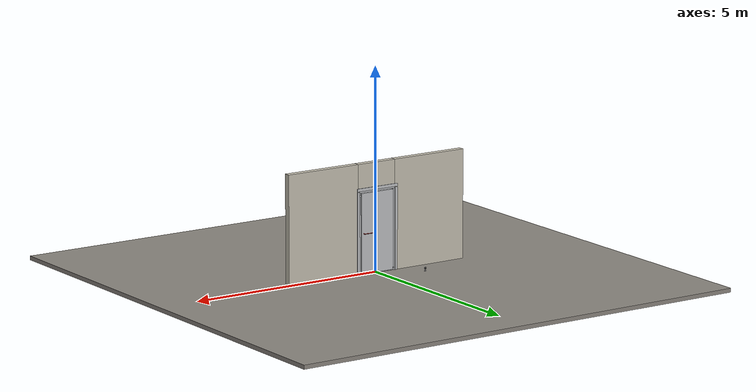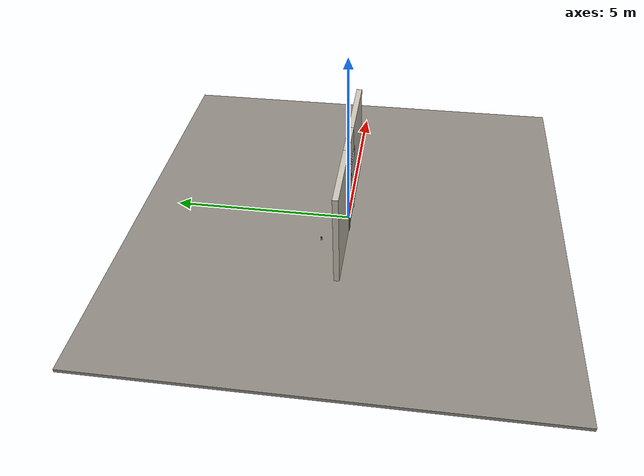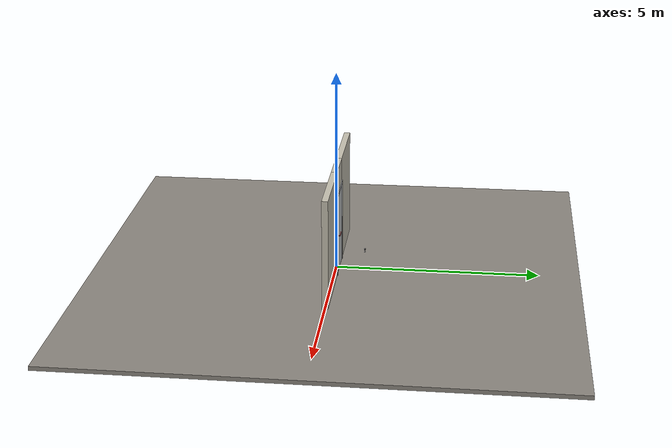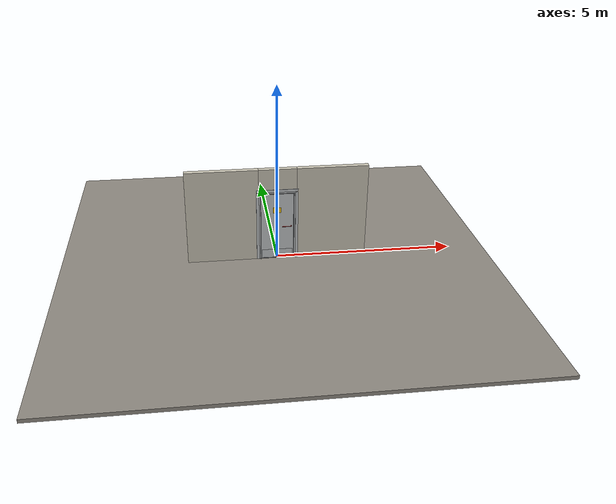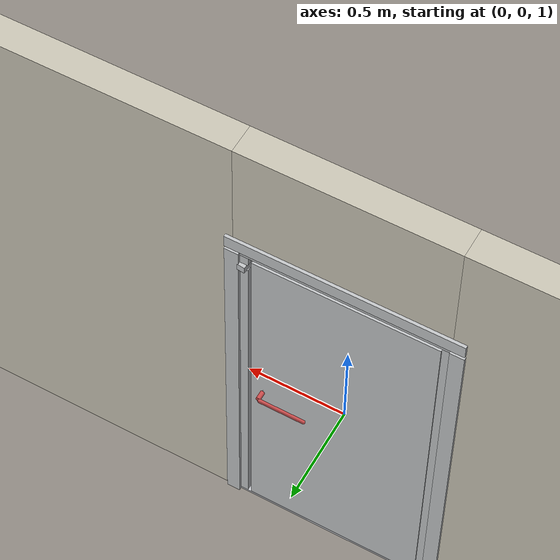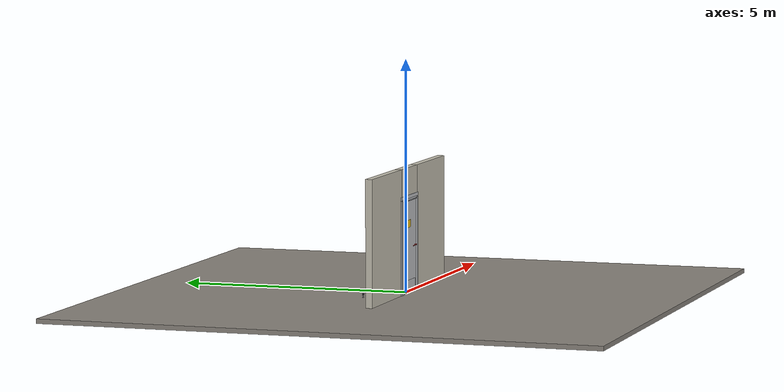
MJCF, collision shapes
<?xml version="1.0" ?>
<mujoco model="db0276_cold_storage_full">
  <compiler angle="radian" meshdir="../../hardware" texturedir="../../textures" autolimits="true" inertiafromgeom="false"/>
  <option timestep="0.002" integrator="implicitfast" cone="elliptic" impratio="10" noslip_iterations="3">
    <flag multiccd="enable"/>
  </option>
  <size memory="16M"/>
  <default>
    <geom condim="4" solref="0.005 1" solimp="0.95 0.99 0.001"/>
    <joint solreflimit="0.005 1" solimplimit="0.95 0.99 0.001"/>
    <tendon solreflimit="0.005 1"/>
    <equality solref="0.002 1"/>
  </default>
  <visual>
    <headlight ambient="0.4 0.4 0.4" diffuse="0.7 0.7 0.7" specular="0.2 0.2 0.2"/>
    <quality shadowsize="4096"/>
    <map znear="0.01" zfar="60"/>
  </visual>
  <asset>
    <mesh name="hinge_05d9a38dfa" file="hinge_05d9a38dfa.obj"/>
    <mesh name="hinge_jamb_953fb56768" file="hinge_jamb_953fb56768.obj"/>
    <mesh name="lever_40740b93f7" file="lever_40740b93f7.obj"/>
    <material name="mat_floor" rgba="0.55 0.53 0.5 1" specular="0.2" shininess="0.15" reflectance="0"/>
    <material name="mat_wall" rgba="0.78 0.76 0.7 1" specular="0.2" shininess="0.1" reflectance="0"/>
    <material name="mat_hinge" rgba="0.55 0.56 0.58 1" specular="0.8" shininess="0.55" reflectance="0.4"/>
    <material name="mat_leaf" rgba="0.75 0.76 0.77 1" specular="0.8" shininess="0.65" reflectance="0.4"/>
    <material name="mat_op_chrome" rgba="0.9 0.9 0.92 1" specular="0.8" shininess="0.9" reflectance="0.4"/>
    <material name="mat_trim" rgba="0.85 0.66 0.3 1" specular="0.8" shininess="0.75" reflectance="0.4"/>
    <material name="mat_bolt" rgba="0.75 0.76 0.77 1" specular="0.8" shininess="0.65" reflectance="0.4"/>
    <material name="mat_frame" rgba="0.75 0.76 0.77 1" specular="0.8" shininess="0.65" reflectance="0.4"/>
    <material name="mat_seal" rgba="0.1 0.1 0.1 1" specular="0.2" shininess="0.1" reflectance="0"/>
    <material name="mat_threshold" rgba="0.8 0.81 0.83 1" specular="0.8" shininess="0.6" reflectance="0.4"/>
    <material name="mat_kick" rgba="0.75 0.76 0.77 1" specular="0.8" shininess="0.65" reflectance="0.4"/>
    <material name="mat_placard" rgba="0.95 0.75 0.05 1" specular="0.2" shininess="0.5" reflectance="0"/>
    <material name="mat_bumper_stop" rgba="0.08 0.08 0.08 1" specular="0.2" shininess="0.1" reflectance="0"/>
    <material name="mat_stop_base" rgba="0.9 0.9 0.92 1" specular="0.8" shininess="0.9" reflectance="0.4"/>
    <texture name="skybox" type="skybox" builtin="gradient" rgb1="0.6 0.7 0.85" rgb2="0.9 0.92 0.95" width="256" height="256"/>
  </asset>
  <worldbody>
    <light name="sun" pos="1.5 -2.5 4" dir="-0.3 0.5 -0.8" directional="true" diffuse="0.8 0.8 0.8" specular="0.3 0.3 0.3" castshadow="true"/>
    <light name="fill" pos="-1.5 2.5 3" dir="0.3 -0.5 -0.7" directional="true" diffuse="0.35 0.35 0.4" castshadow="false"/>
    <camera name="robot_view" pos="0 -2.5 1.7" xyaxes="1 0 0 0 0.26963 0.962964" fovy="52"/>
    <camera name="far_view" pos="0 2.5 1.7" xyaxes="-1 0 0 0 -0.26963 0.962964" fovy="52"/>
    <camera name="iso" pos="1.9 -2.1 2.1" xyaxes="0.741536 0.670913 0 -0.242917 0.268487 0.932151" fovy="46"/>
    <camera name="detail_handle" pos="0.363 -0.93 1.28" xyaxes="0.97561 0.219512 0 -0.070934 0.315262 0.94635" fovy="38"/>
    <geom name="floor" type="box" size="6 6 0.05" pos="0 0 -0.05" material="mat_floor" group="0" contype="1" conaffinity="1" friction="0.8 0.005 0.0001" density="2400"/>
    <geom name="wall_left" type="box" size="0.995 0.075 1.35" pos="-1.505 0 1.35" material="mat_wall" group="0" contype="1" conaffinity="1" friction="0.6 0.005 0.0001" density="800"/>
    <geom name="wall_right" type="box" size="0.98 0.075 1.35" pos="1.52 0 1.35" material="mat_wall" group="0" contype="1" conaffinity="1" friction="0.6 0.005 0.0001" density="800"/>
    <geom name="wall_header" type="box" size="0.525 0.075 0.3125" pos="0.015 0 2.3875" material="mat_wall" group="0" contype="1" conaffinity="1" friction="0.6 0.005 0.0001" density="800"/>
    <geom name="hinge_0_jamb" type="mesh" mesh="hinge_jamb_953fb56768" pos="-0.462 0.082 0.267" quat="0 1 0 0" material="mat_hinge" group="1" contype="0" conaffinity="0" density="7850"/>
    <geom name="hinge_1_jamb" type="mesh" mesh="hinge_jamb_953fb56768" pos="-0.462 0.082 1.8004" quat="0 1 0 0" material="mat_hinge" group="1" contype="0" conaffinity="0" density="7850"/>
    <geom name="jamb_hinge" type="box" size="0.0225 0.075 1" pos="-0.4875 0 1" material="mat_frame" group="0" contype="1" conaffinity="1" friction="0.6 0.005 0.0001" density="300"/>
    <geom name="strike_1930_wall_n" type="box" size="0.0375 0.03375 0.019" pos="0.5025 -0.04125 1.9304" material="mat_frame" group="0" contype="1" conaffinity="1" friction="0.6 0.005 0.0001" density="300"/>
    <geom name="strike_1930_wall_p" type="box" size="0.0375 0.008 0.019" pos="0.5025 0.0155 1.9304" material="mat_frame" group="0" contype="1" conaffinity="1" friction="0.6 0.005 0.0001" density="300"/>
    <geom name="strike_1930_ramp" type="box" size="0.0375 0.035921 0.019" pos="0.505822 0.055596 1.9304" quat="0.99881 0 0 -0.048776" material="mat_frame" group="0" contype="1" conaffinity="1" friction="0.12 0.005 0.0001" density="300"/>
    <geom name="strike_1930_ramp_n" type="box" size="0.0375 0.035921 0.019" pos="0.505822 -0.043596 1.9304" quat="0.99881 0 0 0.048776" material="mat_frame" group="0" contype="1" conaffinity="1" friction="0.12 0.005 0.0001" density="300"/>
    <geom name="strike_1930_back" type="box" size="0.0325 0.0075 0.019" pos="0.5075 0 1.9304" material="mat_frame" group="0" contype="1" conaffinity="1" friction="0.6 0.005 0.0001" density="300"/>
    <geom name="jamb_strike_0" type="box" size="0.0375 0.075 0.9557" pos="0.5025 0 0.9557" material="mat_frame" group="0" contype="1" conaffinity="1" friction="0.6 0.005 0.0001" density="300"/>
    <geom name="jamb_strike_1" type="box" size="0.0375 0.075 0.0253" pos="0.5025 0 1.9747" material="mat_frame" group="0" contype="1" conaffinity="1" friction="0.6 0.005 0.0001" density="300"/>
    <geom name="jamb_head" type="box" size="0.525 0.075 0.0225" pos="0.015 0 2.0225" material="mat_frame" group="0" contype="1" conaffinity="1" friction="0.6 0.005 0.0001" density="300"/>
    <geom name="head_stud" type="box" size="0.525 0.075 0.015" pos="0.015 0 2.06" material="mat_wall" group="0" contype="1" conaffinity="1" friction="0.6 0.005 0.0001" density="500"/>
    <geom name="stop_hinge" type="box" size="0.0055 0.016 1" pos="-0.4595 -0.0915 1" material="mat_frame" group="0" contype="1" conaffinity="1" friction="0.6 0.005 0.0001" density="300"/>
    <geom name="stop_strike" type="box" size="0.0055 0.016 1" pos="0.4595 -0.0915 1" material="mat_frame" group="0" contype="1" conaffinity="1" friction="0.6 0.005 0.0001" density="300"/>
    <geom name="stop_head" type="box" size="0.465 0.016 0.0055" pos="0 -0.0915 1.9945" material="mat_frame" group="0" contype="1" conaffinity="1" friction="0.6 0.005 0.0001" density="300"/>
    <geom name="seal_hinge" type="box" size="0.004 0.005 1" pos="-0.462 -0.08 1" material="mat_seal" group="1" contype="0" conaffinity="0" density="1100"/>
    <geom name="seal_strike" type="box" size="0.004 0.005 1" pos="0.462 -0.08 1" material="mat_seal" group="1" contype="0" conaffinity="0" density="1100"/>
    <geom name="seal_head" type="box" size="0.445 0.005 0.008" pos="0 -0.08 1.988" material="mat_seal" group="1" contype="0" conaffinity="0" density="1100"/>
    <geom name="casing_l_n" type="box" size="0.035 0.008 1.0225" pos="-0.54 -0.083 1" material="mat_frame" group="2" contype="0" conaffinity="0" density="300"/>
    <geom name="casing_r_n" type="box" size="0.035 0.008 1.0225" pos="0.54 -0.083 1" material="mat_frame" group="2" contype="0" conaffinity="0" density="300"/>
    <geom name="casing_h_n" type="box" size="0.575 0.008 0.035" pos="0 -0.083 2.075" material="mat_frame" group="2" contype="0" conaffinity="0" density="300"/>
    <geom name="casing_l_p" type="box" size="0.035 0.008 1.0225" pos="-0.54 0.083 1" material="mat_frame" group="2" contype="0" conaffinity="0" density="300"/>
    <geom name="casing_r_p" type="box" size="0.035 0.008 1.0225" pos="0.54 0.083 1" material="mat_frame" group="2" contype="0" conaffinity="0" density="300"/>
    <geom name="casing_h_p" type="box" size="0.575 0.008 0.035" pos="0 0.083 2.075" material="mat_frame" group="2" contype="0" conaffinity="0" density="300"/>
    <geom name="threshold" type="box" size="0.51 0.075 0.0065" pos="0 0 0.0065" material="mat_threshold" group="0" contype="1" conaffinity="1" friction="0.5 0.005 0.0001" density="2700"/>
    <geom name="door_stop_base" type="cylinder" size="0.022 0.003" pos="-1.020261 0.617633 0.003" material="mat_stop_base" group="0" contype="1" conaffinity="1" friction="0.6 0.005 0.0001" density="7850"/>
    <geom name="door_stop_post" type="cylinder" size="0.012 0.0255" pos="-1.020261 0.617633 0.0315" material="mat_stop_base" group="0" contype="1" conaffinity="1" friction="0.6 0.005 0.0001" density="7850"/>
    <geom name="door_stop_bumper" type="cylinder" size="0.022 0.02" pos="-1.020261 0.617633 0.077" material="mat_bumper_stop" group="0" contype="1" conaffinity="1" friction="0.6 0.005 0.0001" density="1100"/>
    <site name="approach_point" pos="0 -1.5 0" quat="1 0 0 0" size="0.05" rgba="0.2 0.9 0.2 0.5" group="4"/>
    <site name="goal_point" pos="0 1.5 0" quat="1 0 0 0" size="0.05" rgba="0.2 0.9 0.2 0.5" group="4"/>
    <site name="door_plane_center" pos="0 0 1" quat="1 0 0 0" size="0.02" rgba="0.2 0.9 0.2 0.5" group="4"/>
    <body name="leaf_riser" pos="-0.465 0 0">
      <inertial pos="0.003 0.082 0.055" mass="0.174012" quat="0.707107 0 0.707107 0" diaginertia="0.000017053 0.00002732 0.00002732"/>
      <joint name="leaf_rise" type="slide" axis="0 0 1" limited="true" range="0 0.0264" damping="1" armature="0.5"/>
      <geom name="leaf_riser_marker" type="cylinder" size="0.014 0.018" pos="0.003 0.082 0.055" material="mat_hinge" group="1" contype="0" conaffinity="0" density="7850"/>
      <body name="leaf" pos="0 0 0">
        <inertial pos="0.442714 -0.00143 0.957419" mass="50.16185" quat="0.505486 0.492497 -0.502757 0.499165" diaginertia="3.768831343 17.631380349 21.183263216"/>
        <joint name="leaf_hinge" type="hinge" axis="0 0 1" pos="0.003 0.082 0" limited="true" range="0 2.356194" solreflimit="0.02 1" damping="0.295216" frictionloss="4.027657" armature="0.02"/>
        <geom name="leaf_slab" type="box" size="0.455 0.075 0.9817" pos="0.458 0 0.9987" material="mat_leaf" group="0" contype="1" conaffinity="1" friction="0.35 0.005 0.0001" density="1"/>
        <geom name="hinge_0" type="mesh" mesh="hinge_05d9a38dfa" pos="0.003 0.082 0.267" quat="0 1 0 0" material="mat_hinge" group="1" contype="0" conaffinity="0" density="7850"/>
        <geom name="hinge_1" type="mesh" mesh="hinge_05d9a38dfa" pos="0.003 0.082 1.8004" quat="0 1 0 0" material="mat_hinge" group="1" contype="0" conaffinity="0" density="7850"/>
        <geom name="leaf_mag_catch_faceplate" type="box" size="0.0006 0.012 0.029" pos="0.9124 0 1.9304" material="mat_bolt" group="1" contype="0" conaffinity="0" density="8500"/>
        <geom name="kick_plate_n" type="box" size="0.425 0.0008 0.125" pos="0.458 -0.0758 0.152" material="mat_kick" group="2" contype="0" conaffinity="0" density="7900"/>
        <geom name="warning_placard" type="box" size="0.11 0.001 0.08" pos="0.458 -0.076 1.48955" material="mat_placard" group="2" contype="0" conaffinity="0" density="1000"/>
        <site name="leaf_edge_mid" pos="0.913 0 0.9817" quat="1 0 0 0" size="0.02" rgba="0.2 0.9 0.2 0.5" group="4"/>
        <body name="leaf_handle" pos="0.848 0 1">
          <inertial pos="-0.045692 0 0" mass="3.018013" quat="0 0.707107 0.707107 0" diaginertia="0.018502196 0.037998454 0.05452992"/>
          <joint name="leaf_handle_hinge" type="hinge" axis="0 -1 0" limited="true" range="0 0.5" damping="0.58994" frictionloss="0.07" stiffness="2.5" springref="-0.96" armature="0.01"/>
          <geom name="leaf_handle_spindle" type="cylinder" size="0.006 0.075" pos="0 0 0" quat="0.707107 -0.707107 0 0" material="mat_op_chrome" group="1" contype="0" conaffinity="0" density="7850"/>
          <geom name="leaf_handle_lever_n" type="mesh" mesh="lever_40740b93f7" pos="0 -0.075 0" quat="0.707107 0.707107 0 0" material="mat_op_chrome" group="1" contype="0" conaffinity="0" density="3000"/>
          <geom name="leaf_handle_lever_col_n" type="capsule" size="0.0095 0.1155" pos="-0.125 -0.13 0" quat="0.707107 0 -0.707107 0" material="mat_op_chrome" group="3" contype="1" conaffinity="1" rgba="0.8 0.3 0.3 0.25" friction="0.7 0.01 0.0001" density="3000"/>
          <geom name="leaf_handle_hub_col_n" type="cylinder" size="0.012 0.022" pos="0 -0.105 0" quat="0.707107 -0.707107 0 0" material="mat_op_chrome" group="3" contype="1" conaffinity="1" rgba="0.8 0.3 0.3 0.25" friction="0.6 0.005 0.0001" density="3000"/>
          <geom name="leaf_handle_lever_p" type="mesh" mesh="lever_40740b93f7" pos="0 0.075 0" quat="-0.707107 0.707107 0 0" material="mat_op_chrome" group="1" contype="0" conaffinity="0" density="3000"/>
          <geom name="leaf_handle_lever_col_p" type="capsule" size="0.0095 0.1155" pos="-0.125 0.13 0" quat="0.707107 0 -0.707107 0" material="mat_op_chrome" group="3" contype="1" conaffinity="1" rgba="0.8 0.3 0.3 0.25" friction="0.7 0.01 0.0001" density="3000"/>
          <geom name="leaf_handle_hub_col_p" type="cylinder" size="0.012 0.022" pos="0 0.105 0" quat="0.707107 -0.707107 0 0" material="mat_op_chrome" group="3" contype="1" conaffinity="1" rgba="0.8 0.3 0.3 0.25" friction="0.6 0.005 0.0001" density="3000"/>
          <site name="leaf_handle_grip_n" pos="-0.2 -0.13 0" quat="1 0 0 0" size="0.012" rgba="0.2 0.9 0.2 0.5" group="4"/>
          <site name="leaf_handle_grip_p" pos="-0.2 0.13 0" quat="1 0 0 0" size="0.012" rgba="0.2 0.9 0.2 0.5" group="4"/>
        </body>
        <body name="leaf_mag_catch" pos="0.913 0 1.9304">
          <inertial pos="-0.012 0 0" mass="0.030762" quat="0 0 0.707107 0.707107" diaginertia="0.000000526 0.000002949 0.000002949"/>
          <joint name="leaf_mag_catch_slide" type="slide" axis="-1 0 0" limited="true" range="0 0.006" damping="2" frictionloss="0.3" stiffness="20000" springref="-0.006" armature="0.1"/>
          <geom name="leaf_mag_catch_capsule" type="capsule" size="0.006 0.012" pos="-0.012 0 0" quat="0.707107 0 0.707107 0" material="mat_bolt" group="0" contype="1" conaffinity="1" friction="0.2 0.005 0.0001" density="8500"/>
        </body>
      </body>
    </body>
  </worldbody>
  <equality>
    <joint name="leaf_rise_couple" joint1="leaf_rise" joint2="leaf_hinge" polycoef="0 0.007639 0 0 0" active="true"/>
  </equality>
  <sensor>
    <jointpos name="leaf_hinge_pos" joint="leaf_hinge"/>
    <jointvel name="leaf_hinge_vel" joint="leaf_hinge"/>
    <jointpos name="leaf_handle_hinge_pos" joint="leaf_handle_hinge"/>
    <jointvel name="leaf_handle_hinge_vel" joint="leaf_handle_hinge"/>
    <jointpos name="leaf_mag_catch_slide_pos" joint="leaf_mag_catch_slide"/>
    <jointvel name="leaf_mag_catch_slide_vel" joint="leaf_mag_catch_slide"/>
  </sensor>
</mujoco>
